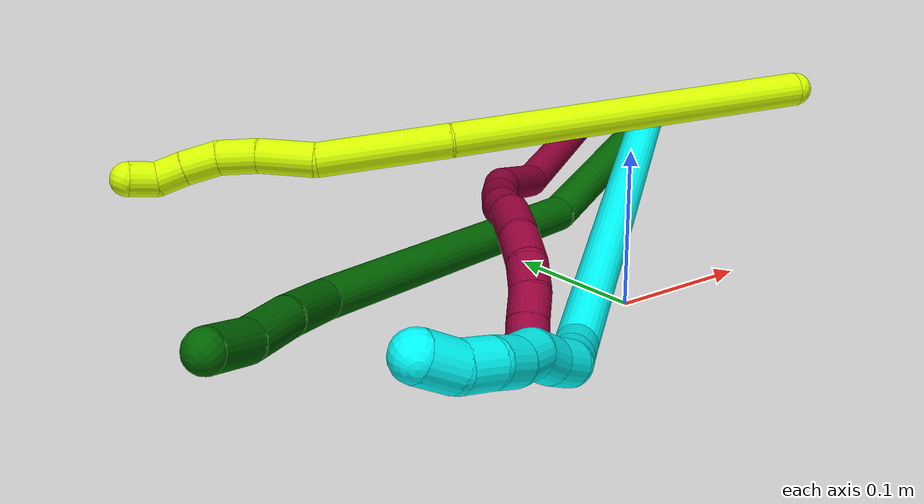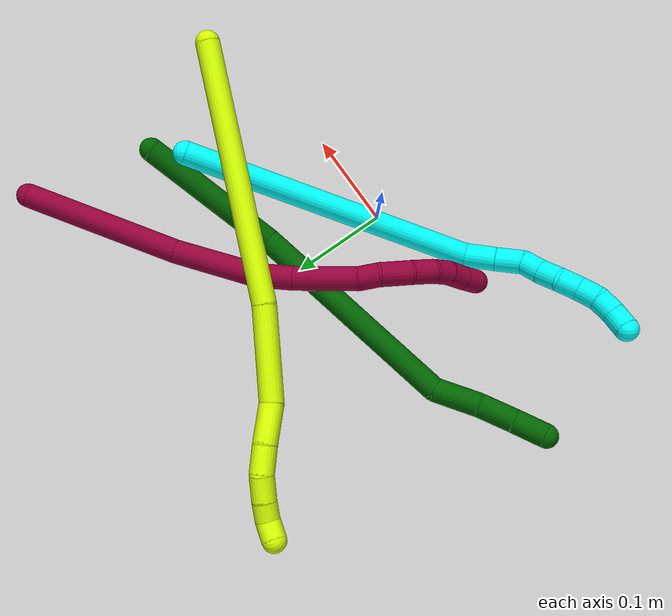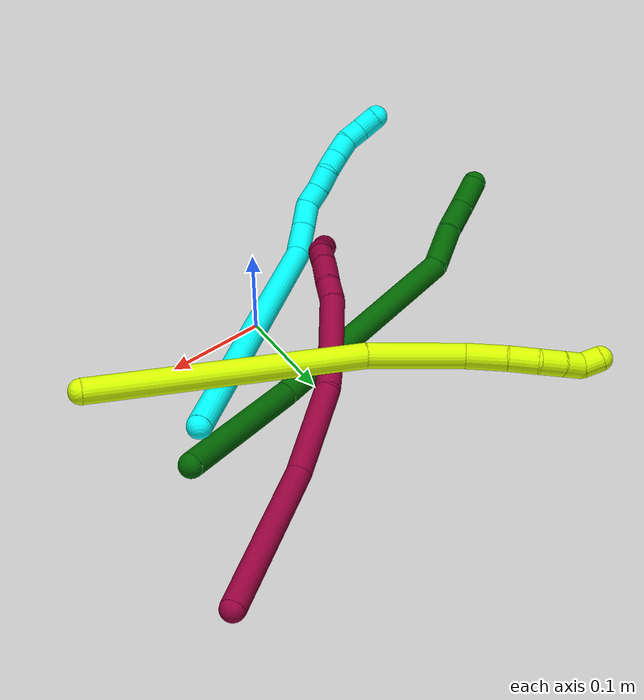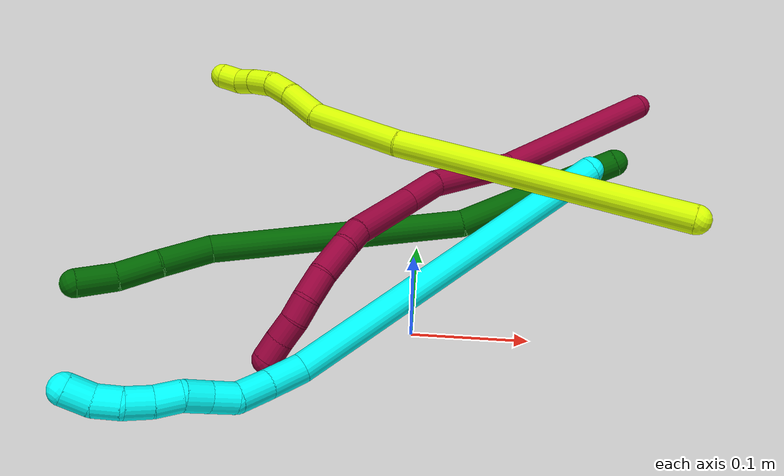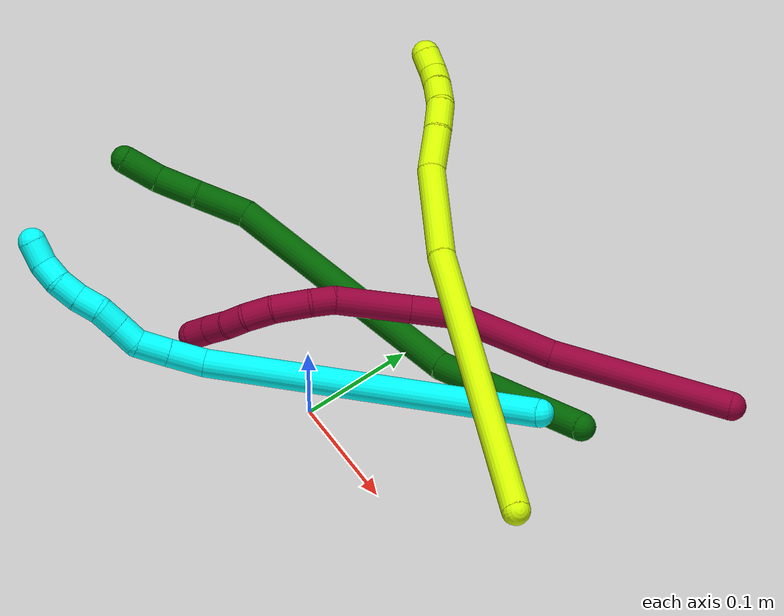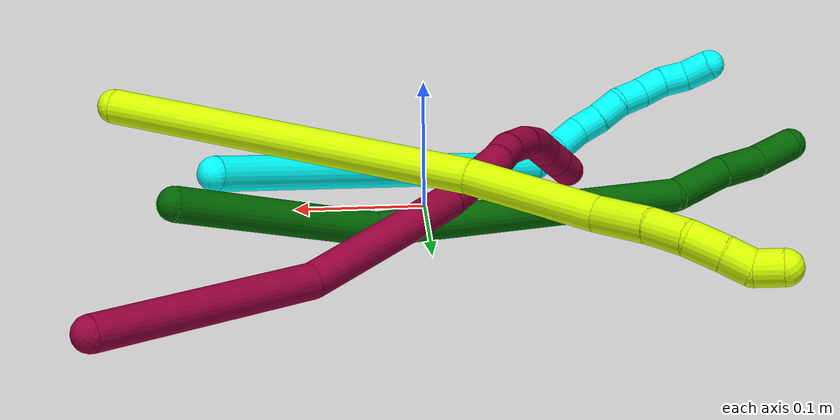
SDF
<sdf version="1.7">
 <world name="default">
  <model name="3">
   <static>0</static>
   <link name="3">
    <collision name="collision-cylinder-e_1_1_4">
     <pose>-0.061236 -0.010171 -0.140804 3.06948 -0.409279 -2.79744</pose>
     <geometry><cylinder><radius>0.0125</radius><length>0.307759</length></cylinder></geometry>
     <surface>
      <friction><ode><mu>1.16</mu><mu2>1.16</mu2><slip1>0</slip1><slip2>0</slip2></ode></friction>
      <contact><ode><kp>1e+06</kp><kd>1</kd><max_vel>0</max_vel><min_depth>0.001</min_depth></ode></contact>
     </surface>
    </collision>
    <visual name="visual-cylinder-e_1_1_4">
     <pose>-0.061236 -0.010171 -0.140804 3.06948 -0.409279 -2.79744</pose>
     <geometry><cylinder><radius>0.0125</radius><length>0.307759</length></cylinder></geometry>
     <material><ambient>0.003922 1 0.996078 1</ambient></material>
    </visual>
    <collision name="collision-cylinder-e_2_4_5">
     <pose>-0.123749 -0.026911 -0.297209 2.74305 -0.07531 -0.368851</pose>
     <geometry><cylinder><radius>0.0125</radius><length>0.033953</length></cylinder></geometry>
     <surface>
      <friction><ode><mu>1.16</mu><mu2>1.16</mu2><slip1>0</slip1><slip2>0</slip2></ode></friction>
      <contact><ode><kp>1e+06</kp><kd>1</kd><max_vel>0</max_vel><min_depth>0.001</min_depth></ode></contact>
     </surface>
    </collision>
    <visual name="visual-cylinder-e_2_4_5">
     <pose>-0.123749 -0.026911 -0.297209 2.74305 -0.07531 -0.368851</pose>
     <geometry><cylinder><radius>0.0125</radius><length>0.033953</length></cylinder></geometry>
     <material><ambient>0.003922 1 0.996078 1</ambient></material>
    </visual>
    <collision name="collision-cylinder-e_3_5_6">
     <pose>-0.125438 -0.039646 -0.325753 2.69699 -0.028649 -0.126582</pose>
     <geometry><cylinder><radius>0.0125</radius><length>0.028684</length></cylinder></geometry>
     <surface>
      <friction><ode><mu>1.16</mu><mu2>1.16</mu2><slip1>0</slip1><slip2>0</slip2></ode></friction>
      <contact><ode><kp>1e+06</kp><kd>1</kd><max_vel>0</max_vel><min_depth>0.001</min_depth></ode></contact>
     </surface>
    </collision>
    <visual name="visual-cylinder-e_3_5_6">
     <pose>-0.125438 -0.039646 -0.325753 2.69699 -0.028649 -0.126582</pose>
     <geometry><cylinder><radius>0.0125</radius><length>0.028684</length></cylinder></geometry>
     <material><ambient>0.003922 1 0.996078 1</ambient></material>
    </visual>
    <collision name="collision-cylinder-e_4_6_7">
     <pose>-0.128818 -0.053556 -0.34574 2.30897 -0.276438 -0.609613</pose>
     <geometry><cylinder><radius>0.0125</radius><length>0.021764</length></cylinder></geometry>
     <surface>
      <friction><ode><mu>1.16</mu><mu2>1.16</mu2><slip1>0</slip1><slip2>0</slip2></ode></friction>
      <contact><ode><kp>1e+06</kp><kd>1</kd><max_vel>0</max_vel><min_depth>0.001</min_depth></ode></contact>
     </surface>
    </collision>
    <visual name="visual-cylinder-e_4_6_7">
     <pose>-0.128818 -0.053556 -0.34574 2.30897 -0.276438 -0.609613</pose>
     <geometry><cylinder><radius>0.0125</radius><length>0.021764</length></cylinder></geometry>
     <material><ambient>0.003922 1 0.996078 1</ambient></material>
    </visual>
    <collision name="collision-cylinder-e_5_7_8">
     <pose>-0.133373 -0.069403 -0.359881 2.29006 -0.146055 -0.319873</pose>
     <geometry><cylinder><radius>0.0125</radius><length>0.021773</length></cylinder></geometry>
     <surface>
      <friction><ode><mu>1.16</mu><mu2>1.16</mu2><slip1>0</slip1><slip2>0</slip2></ode></friction>
      <contact><ode><kp>1e+06</kp><kd>1</kd><max_vel>0</max_vel><min_depth>0.001</min_depth></ode></contact>
     </surface>
    </collision>
    <visual name="visual-cylinder-e_5_7_8">
     <pose>-0.133373 -0.069403 -0.359881 2.29006 -0.146055 -0.319873</pose>
     <geometry><cylinder><radius>0.0125</radius><length>0.021773</length></cylinder></geometry>
     <material><ambient>0.003922 1 0.996078 1</ambient></material>
    </visual>
    <collision name="collision-cylinder-e_6_8_9">
     <pose>-0.138463 -0.082892 -0.375727 2.58979 -0.328764 -1.05995</pose>
     <geometry><cylinder><radius>0.0125</radius><length>0.021714</length></cylinder></geometry>
     <surface>
      <friction><ode><mu>1.16</mu><mu2>1.16</mu2><slip1>0</slip1><slip2>0</slip2></ode></friction>
      <contact><ode><kp>1e+06</kp><kd>1</kd><max_vel>0</max_vel><min_depth>0.001</min_depth></ode></contact>
     </surface>
    </collision>
    <visual name="visual-cylinder-e_6_8_9">
     <pose>-0.138463 -0.082892 -0.375727 2.58979 -0.328764 -1.05995</pose>
     <geometry><cylinder><radius>0.0125</radius><length>0.021714</length></cylinder></geometry>
     <material><ambient>0.003922 1 0.996078 1</ambient></material>
    </visual>
    <collision name="collision-cylinder-e_7_9_10">
     <pose>-0.145179 -0.095239 -0.392122 2.40302 -0.301177 -0.747259</pose>
     <geometry><cylinder><radius>0.0125</radius><length>0.02165</length></cylinder></geometry>
     <surface>
      <friction><ode><mu>1.16</mu><mu2>1.16</mu2><slip1>0</slip1><slip2>0</slip2></ode></friction>
      <contact><ode><kp>1e+06</kp><kd>1</kd><max_vel>0</max_vel><min_depth>0.001</min_depth></ode></contact>
     </surface>
    </collision>
    <visual name="visual-cylinder-e_7_9_10">
     <pose>-0.145179 -0.095239 -0.392122 2.40302 -0.301177 -0.747259</pose>
     <geometry><cylinder><radius>0.0125</radius><length>0.02165</length></cylinder></geometry>
     <material><ambient>0.003922 1 0.996078 1</ambient></material>
    </visual>
    <collision name="collision-cylinder-e_8_10_11">
     <pose>-0.154105 -0.108791 -0.405528 2.28912 -0.578257 -1.1599</pose>
     <geometry><cylinder><radius>0.0125</radius><length>0.02091</length></cylinder></geometry>
     <surface>
      <friction><ode><mu>1.16</mu><mu2>1.16</mu2><slip1>0</slip1><slip2>0</slip2></ode></friction>
      <contact><ode><kp>1e+06</kp><kd>1</kd><max_vel>0</max_vel><min_depth>0.001</min_depth></ode></contact>
     </surface>
    </collision>
    <visual name="visual-cylinder-e_8_10_11">
     <pose>-0.154105 -0.108791 -0.405528 2.28912 -0.578257 -1.1599</pose>
     <geometry><cylinder><radius>0.0125</radius><length>0.02091</length></cylinder></geometry>
     <material><ambient>0.003922 1 0.996078 1</ambient></material>
    </visual>
    <collision name="collision-cylinder-e_9_11_2">
     <pose>-0.164589 -0.124481 -0.414921 1.95049 -0.453127 -0.655813</pose>
     <geometry><cylinder><radius>0.0125</radius><length>0.021792</length></cylinder></geometry>
     <surface>
      <friction><ode><mu>1.16</mu><mu2>1.16</mu2><slip1>0</slip1><slip2>0</slip2></ode></friction>
      <contact><ode><kp>1e+06</kp><kd>1</kd><max_vel>0</max_vel><min_depth>0.001</min_depth></ode></contact>
     </surface>
    </collision>
    <visual name="visual-cylinder-e_9_11_2">
     <pose>-0.164589 -0.124481 -0.414921 1.95049 -0.453127 -0.655813</pose>
     <geometry><cylinder><radius>0.0125</radius><length>0.021792</length></cylinder></geometry>
     <material><ambient>0.003922 1 0.996078 1</ambient></material>
    </visual>
    <collision name="collision-sphere-2">
     <pose>-0.169359 -0.13358 -0.418552 0 -0 0</pose>
     <geometry><sphere><radius>0.0125</radius></sphere></geometry>
     <surface>
      <friction><ode><mu>1.16</mu><mu2>1.16</mu2><slip1>0</slip1><slip2>0</slip2></ode></friction>
      <contact><ode><kp>1e+06</kp><kd>1</kd><max_vel>0</max_vel><min_depth>0.001</min_depth></ode></contact>
     </surface>
    </collision>
    <visual name="visual-sphere-2">
     <pose>-0.169359 -0.13358 -0.418552 0 -0 0</pose>
     <geometry><sphere><radius>0.0125</radius></sphere></geometry>
     <material><ambient>0.003922 1 0.996078 1</ambient></material>
    </visual>
    <collision name="collision-sphere-11">
     <pose>-0.159819 -0.115382 -0.41129 0 -0 0</pose>
     <geometry><sphere><radius>0.0125</radius></sphere></geometry>
     <surface>
      <friction><ode><mu>1.16</mu><mu2>1.16</mu2><slip1>0</slip1><slip2>0</slip2></ode></friction>
      <contact><ode><kp>1e+06</kp><kd>1</kd><max_vel>0</max_vel><min_depth>0.001</min_depth></ode></contact>
     </surface>
    </collision>
    <visual name="visual-sphere-11">
     <pose>-0.159819 -0.115382 -0.41129 0 -0 0</pose>
     <geometry><sphere><radius>0.0125</radius></sphere></geometry>
     <material><ambient>0.003922 1 0.996078 1</ambient></material>
    </visual>
    <collision name="collision-sphere-10">
     <pose>-0.148391 -0.102199 -0.399766 0 -0 0</pose>
     <geometry><sphere><radius>0.0125</radius></sphere></geometry>
     <surface>
      <friction><ode><mu>1.16</mu><mu2>1.16</mu2><slip1>0</slip1><slip2>0</slip2></ode></friction>
      <contact><ode><kp>1e+06</kp><kd>1</kd><max_vel>0</max_vel><min_depth>0.001</min_depth></ode></contact>
     </surface>
    </collision>
    <visual name="visual-sphere-10">
     <pose>-0.148391 -0.102199 -0.399766 0 -0 0</pose>
     <geometry><sphere><radius>0.0125</radius></sphere></geometry>
     <material><ambient>0.003922 1 0.996078 1</ambient></material>
    </visual>
    <collision name="collision-sphere-9">
     <pose>-0.141968 -0.088279 -0.384478 0 -0 0</pose>
     <geometry><sphere><radius>0.0125</radius></sphere></geometry>
     <surface>
      <friction><ode><mu>1.16</mu><mu2>1.16</mu2><slip1>0</slip1><slip2>0</slip2></ode></friction>
      <contact><ode><kp>1e+06</kp><kd>1</kd><max_vel>0</max_vel><min_depth>0.001</min_depth></ode></contact>
     </surface>
    </collision>
    <visual name="visual-sphere-9">
     <pose>-0.141968 -0.088279 -0.384478 0 -0 0</pose>
     <geometry><sphere><radius>0.0125</radius></sphere></geometry>
     <material><ambient>0.003922 1 0.996078 1</ambient></material>
    </visual>
    <collision name="collision-sphere-4">
     <pose>-0.122472 -0.020342 -0.281607 0 -0 0</pose>
     <geometry><sphere><radius>0.0125</radius></sphere></geometry>
     <surface>
      <friction><ode><mu>1.16</mu><mu2>1.16</mu2><slip1>0</slip1><slip2>0</slip2></ode></friction>
      <contact><ode><kp>1e+06</kp><kd>1</kd><max_vel>0</max_vel><min_depth>0.001</min_depth></ode></contact>
     </surface>
    </collision>
    <visual name="visual-sphere-4">
     <pose>-0.122472 -0.020342 -0.281607 0 -0 0</pose>
     <geometry><sphere><radius>0.0125</radius></sphere></geometry>
     <material><ambient>0.003922 1 0.996078 1</ambient></material>
    </visual>
    <collision name="collision-sphere-1">
     <geometry><sphere><radius>0.0125</radius></sphere></geometry>
     <surface>
      <friction><ode><mu>1.16</mu><mu2>1.16</mu2><slip1>0</slip1><slip2>0</slip2></ode></friction>
      <contact><ode><kp>1e+06</kp><kd>1</kd><max_vel>0</max_vel><min_depth>0.001</min_depth></ode></contact>
     </surface>
    </collision>
    <visual name="visual-sphere-1">
     <geometry><sphere><radius>0.0125</radius></sphere></geometry>
     <material><ambient>0.003922 1 0.996078 1</ambient></material>
    </visual>
    <collision name="collision-sphere-8">
     <pose>-0.134957 -0.077506 -0.366977 0 -0 0</pose>
     <geometry><sphere><radius>0.0125</radius></sphere></geometry>
     <surface>
      <friction><ode><mu>1.16</mu><mu2>1.16</mu2><slip1>0</slip1><slip2>0</slip2></ode></friction>
      <contact><ode><kp>1e+06</kp><kd>1</kd><max_vel>0</max_vel><min_depth>0.001</min_depth></ode></contact>
     </surface>
    </collision>
    <visual name="visual-sphere-8">
     <pose>-0.134957 -0.077506 -0.366977 0 -0 0</pose>
     <geometry><sphere><radius>0.0125</radius></sphere></geometry>
     <material><ambient>0.003922 1 0.996078 1</ambient></material>
    </visual>
    <collision name="collision-sphere-5">
     <pose>-0.125027 -0.033481 -0.31281 0 -0 0</pose>
     <geometry><sphere><radius>0.0125</radius></sphere></geometry>
     <surface>
      <friction><ode><mu>1.16</mu><mu2>1.16</mu2><slip1>0</slip1><slip2>0</slip2></ode></friction>
      <contact><ode><kp>1e+06</kp><kd>1</kd><max_vel>0</max_vel><min_depth>0.001</min_depth></ode></contact>
     </surface>
    </collision>
    <visual name="visual-sphere-5">
     <pose>-0.125027 -0.033481 -0.31281 0 -0 0</pose>
     <geometry><sphere><radius>0.0125</radius></sphere></geometry>
     <material><ambient>0.003922 1 0.996078 1</ambient></material>
    </visual>
    <collision name="collision-sphere-6">
     <pose>-0.125848 -0.045812 -0.338695 0 -0 0</pose>
     <geometry><sphere><radius>0.0125</radius></sphere></geometry>
     <surface>
      <friction><ode><mu>1.16</mu><mu2>1.16</mu2><slip1>0</slip1><slip2>0</slip2></ode></friction>
      <contact><ode><kp>1e+06</kp><kd>1</kd><max_vel>0</max_vel><min_depth>0.001</min_depth></ode></contact>
     </surface>
    </collision>
    <visual name="visual-sphere-6">
     <pose>-0.125848 -0.045812 -0.338695 0 -0 0</pose>
     <geometry><sphere><radius>0.0125</radius></sphere></geometry>
     <material><ambient>0.003922 1 0.996078 1</ambient></material>
    </visual>
    <collision name="collision-sphere-7">
     <pose>-0.131788 -0.0613 -0.352785 0 -0 0</pose>
     <geometry><sphere><radius>0.0125</radius></sphere></geometry>
     <surface>
      <friction><ode><mu>1.16</mu><mu2>1.16</mu2><slip1>0</slip1><slip2>0</slip2></ode></friction>
      <contact><ode><kp>1e+06</kp><kd>1</kd><max_vel>0</max_vel><min_depth>0.001</min_depth></ode></contact>
     </surface>
    </collision>
    <visual name="visual-sphere-7">
     <pose>-0.131788 -0.0613 -0.352785 0 -0 0</pose>
     <geometry><sphere><radius>0.0125</radius></sphere></geometry>
     <material><ambient>0.003922 1 0.996078 1</ambient></material>
    </visual>
    <inertial>
     <pose>-0.090624 -0.033414 -0.224598 0 -0 0</pose>
     <mass>0.5</mass>
     <inertia>
      <ixx>-0.002871</ixx>
      <ixy>0</ixy>
      <ixz>0</ixz>
      <iyy>0.001532</iyy>
      <iyz>0</iyz>
      <izz>0.001114</izz>
     </inertia>
    </inertial>
   </link>
   <pose>0.151053 0.133585 0.079047 -1.48965 -0.563387 -0.56879</pose>
  </model>
  <model name="6">
   <static>0</static>
   <link name="6">
    <collision name="collision-cylinder-e_1_1_4">
     <pose>-0.006711 -0.004158 -0.07487 3.08611 -0.08926 -2.02975</pose>
     <geometry><cylinder><radius>0.0125</radius><length>0.150569</length></cylinder></geometry>
     <surface>
      <friction><ode><mu>1.16</mu><mu2>1.16</mu2><slip1>0</slip1><slip2>0</slip2></ode></friction>
      <contact><ode><kp>1e+06</kp><kd>1</kd><max_vel>0</max_vel><min_depth>0.001</min_depth></ode></contact>
     </surface>
    </collision>
    <visual name="visual-cylinder-e_1_1_4">
     <pose>-0.006711 -0.004158 -0.07487 3.08611 -0.08926 -2.02975</pose>
     <geometry><cylinder><radius>0.0125</radius><length>0.150569</length></cylinder></geometry>
     <material><ambient>0 0.392157 0.003922 1</ambient></material>
    </visual>
    <collision name="collision-cylinder-e_2_4_5">
     <pose>-0.054237 -0.02925 -0.255049 2.94536 -0.363261 -2.15758</pose>
     <geometry><cylinder><radius>0.0125</radius><length>0.229732</length></cylinder></geometry>
     <surface>
      <friction><ode><mu>1.16</mu><mu2>1.16</mu2><slip1>0</slip1><slip2>0</slip2></ode></friction>
      <contact><ode><kp>1e+06</kp><kd>1</kd><max_vel>0</max_vel><min_depth>0.001</min_depth></ode></contact>
     </surface>
    </collision>
    <visual name="visual-cylinder-e_2_4_5">
     <pose>-0.054237 -0.02925 -0.255049 2.94536 -0.363261 -2.15758</pose>
     <geometry><cylinder><radius>0.0125</radius><length>0.229732</length></cylinder></geometry>
     <material><ambient>0 0.392157 0.003922 1</ambient></material>
    </visual>
    <collision name="collision-cylinder-e_3_5_6">
     <pose>-0.098487 -0.062603 -0.380032 2.57855 -0.146621 -0.497381</pose>
     <geometry><cylinder><radius>0.0125</radius><length>0.047036</length></cylinder></geometry>
     <surface>
      <friction><ode><mu>1.16</mu><mu2>1.16</mu2><slip1>0</slip1><slip2>0</slip2></ode></friction>
      <contact><ode><kp>1e+06</kp><kd>1</kd><max_vel>0</max_vel><min_depth>0.001</min_depth></ode></contact>
     </surface>
    </collision>
    <visual name="visual-cylinder-e_3_5_6">
     <pose>-0.098487 -0.062603 -0.380032 2.57855 -0.146621 -0.497381</pose>
     <geometry><cylinder><radius>0.0125</radius><length>0.047036</length></cylinder></geometry>
     <material><ambient>0 0.392157 0.003922 1</ambient></material>
    </visual>
    <collision name="collision-cylinder-e_4_6_7">
     <pose>-0.104462 -0.082634 -0.416896 2.72472 -0.134261 -0.615531</pose>
     <geometry><cylinder><radius>0.0125</radius><length>0.037941</length></cylinder></geometry>
     <surface>
      <friction><ode><mu>1.16</mu><mu2>1.16</mu2><slip1>0</slip1><slip2>0</slip2></ode></friction>
      <contact><ode><kp>1e+06</kp><kd>1</kd><max_vel>0</max_vel><min_depth>0.001</min_depth></ode></contact>
     </surface>
    </collision>
    <visual name="visual-cylinder-e_4_6_7">
     <pose>-0.104462 -0.082634 -0.416896 2.72472 -0.134261 -0.615531</pose>
     <geometry><cylinder><radius>0.0125</radius><length>0.037941</length></cylinder></geometry>
     <material><ambient>0 0.392157 0.003922 1</ambient></material>
    </visual>
    <collision name="collision-cylinder-e_5_7_2">
     <pose>-0.111867 -0.09902 -0.448254 2.58709 -0.284062 -0.931243</pose>
     <geometry><cylinder><radius>0.0125</radius><length>0.034722</length></cylinder></geometry>
     <surface>
      <friction><ode><mu>1.16</mu><mu2>1.16</mu2><slip1>0</slip1><slip2>0</slip2></ode></friction>
      <contact><ode><kp>1e+06</kp><kd>1</kd><max_vel>0</max_vel><min_depth>0.001</min_depth></ode></contact>
     </surface>
    </collision>
    <visual name="visual-cylinder-e_5_7_2">
     <pose>-0.111867 -0.09902 -0.448254 2.58709 -0.284062 -0.931243</pose>
     <geometry><cylinder><radius>0.0125</radius><length>0.034722</length></cylinder></geometry>
     <material><ambient>0 0.392157 0.003922 1</ambient></material>
    </visual>
    <collision name="collision-sphere-2">
     <pose>-0.116733 -0.107795 -0.462422 0 -0 0</pose>
     <geometry><sphere><radius>0.0125</radius></sphere></geometry>
     <surface>
      <friction><ode><mu>1.16</mu><mu2>1.16</mu2><slip1>0</slip1><slip2>0</slip2></ode></friction>
      <contact><ode><kp>1e+06</kp><kd>1</kd><max_vel>0</max_vel><min_depth>0.001</min_depth></ode></contact>
     </surface>
    </collision>
    <visual name="visual-sphere-2">
     <pose>-0.116733 -0.107795 -0.462422 0 -0 0</pose>
     <geometry><sphere><radius>0.0125</radius></sphere></geometry>
     <material><ambient>0 0.392157 0.003922 1</ambient></material>
    </visual>
    <collision name="collision-sphere-7">
     <pose>-0.107002 -0.090246 -0.434086 0 -0 0</pose>
     <geometry><sphere><radius>0.0125</radius></sphere></geometry>
     <surface>
      <friction><ode><mu>1.16</mu><mu2>1.16</mu2><slip1>0</slip1><slip2>0</slip2></ode></friction>
      <contact><ode><kp>1e+06</kp><kd>1</kd><max_vel>0</max_vel><min_depth>0.001</min_depth></ode></contact>
     </surface>
    </collision>
    <visual name="visual-sphere-7">
     <pose>-0.107002 -0.090246 -0.434086 0 -0 0</pose>
     <geometry><sphere><radius>0.0125</radius></sphere></geometry>
     <material><ambient>0 0.392157 0.003922 1</ambient></material>
    </visual>
    <collision name="collision-sphere-6">
     <pose>-0.101923 -0.075021 -0.399707 0 -0 0</pose>
     <geometry><sphere><radius>0.0125</radius></sphere></geometry>
     <surface>
      <friction><ode><mu>1.16</mu><mu2>1.16</mu2><slip1>0</slip1><slip2>0</slip2></ode></friction>
      <contact><ode><kp>1e+06</kp><kd>1</kd><max_vel>0</max_vel><min_depth>0.001</min_depth></ode></contact>
     </surface>
    </collision>
    <visual name="visual-sphere-6">
     <pose>-0.101923 -0.075021 -0.399707 0 -0 0</pose>
     <geometry><sphere><radius>0.0125</radius></sphere></geometry>
     <material><ambient>0 0.392157 0.003922 1</ambient></material>
    </visual>
    <collision name="collision-sphere-5">
     <pose>-0.095051 -0.050185 -0.360358 0 -0 0</pose>
     <geometry><sphere><radius>0.0125</radius></sphere></geometry>
     <surface>
      <friction><ode><mu>1.16</mu><mu2>1.16</mu2><slip1>0</slip1><slip2>0</slip2></ode></friction>
      <contact><ode><kp>1e+06</kp><kd>1</kd><max_vel>0</max_vel><min_depth>0.001</min_depth></ode></contact>
     </surface>
    </collision>
    <visual name="visual-sphere-5">
     <pose>-0.095051 -0.050185 -0.360358 0 -0 0</pose>
     <geometry><sphere><radius>0.0125</radius></sphere></geometry>
     <material><ambient>0 0.392157 0.003922 1</ambient></material>
    </visual>
    <collision name="collision-sphere-1">
     <geometry><sphere><radius>0.0125</radius></sphere></geometry>
     <surface>
      <friction><ode><mu>1.16</mu><mu2>1.16</mu2><slip1>0</slip1><slip2>0</slip2></ode></friction>
      <contact><ode><kp>1e+06</kp><kd>1</kd><max_vel>0</max_vel><min_depth>0.001</min_depth></ode></contact>
     </surface>
    </collision>
    <visual name="visual-sphere-1">
     <geometry><sphere><radius>0.0125</radius></sphere></geometry>
     <material><ambient>0 0.392157 0.003922 1</ambient></material>
    </visual>
    <collision name="collision-sphere-4">
     <pose>-0.013422 -0.008316 -0.149739 0 -0 0</pose>
     <geometry><sphere><radius>0.0125</radius></sphere></geometry>
     <surface>
      <friction><ode><mu>1.16</mu><mu2>1.16</mu2><slip1>0</slip1><slip2>0</slip2></ode></friction>
      <contact><ode><kp>1e+06</kp><kd>1</kd><max_vel>0</max_vel><min_depth>0.001</min_depth></ode></contact>
     </surface>
    </collision>
    <visual name="visual-sphere-4">
     <pose>-0.013422 -0.008316 -0.149739 0 -0 0</pose>
     <geometry><sphere><radius>0.0125</radius></sphere></geometry>
     <material><ambient>0 0.392157 0.003922 1</ambient></material>
    </visual>
    <inertial>
     <pose>-0.051901 -0.033728 -0.238245 0 -0 0</pose>
     <mass>0.5</mass>
     <inertia>
      <ixx>-0.001713</ixx>
      <ixy>0</ixy>
      <ixz>0</ixz>
      <iyy>-0.000345</iyy>
      <iyz>0</iyz>
      <izz>0.000568</izz>
     </inertia>
    </inertial>
   </link>
   <pose>0.1773 0.158785 0.067084 -1.09236 0.641767 -0.898695</pose>
  </model>
  <model name="8">
   <static>0</static>
   <link name="8">
    <collision name="collision-cylinder-e_1_1_4">
     <pose>-0.03444 0.027889 -0.069263 -2.7588 -0.432168 1.69522</pose>
     <geometry><cylinder><radius>0.0125</radius><length>0.164453</length></cylinder></geometry>
     <surface>
      <friction><ode><mu>1.16</mu><mu2>1.16</mu2><slip1>0</slip1><slip2>0</slip2></ode></friction>
      <contact><ode><kp>1e+06</kp><kd>1</kd><max_vel>0</max_vel><min_depth>0.001</min_depth></ode></contact>
     </surface>
    </collision>
    <visual name="visual-cylinder-e_1_1_4">
     <pose>-0.03444 0.027889 -0.069263 -2.7588 -0.432168 1.69522</pose>
     <geometry><cylinder><radius>0.0125</radius><length>0.164453</length></cylinder></geometry>
     <material><ambient>0.584314 0 0.227451 1</ambient></material>
    </visual>
    <collision name="collision-cylinder-e_2_4_5">
     <pose>-0.093836 0.079482 -0.169286 -2.48504 -0.571179 1.4229</pose>
     <geometry><cylinder><radius>0.0125</radius><length>0.092326</length></cylinder></geometry>
     <surface>
      <friction><ode><mu>1.16</mu><mu2>1.16</mu2><slip1>0</slip1><slip2>0</slip2></ode></friction>
      <contact><ode><kp>1e+06</kp><kd>1</kd><max_vel>0</max_vel><min_depth>0.001</min_depth></ode></contact>
     </surface>
    </collision>
    <visual name="visual-cylinder-e_2_4_5">
     <pose>-0.093836 0.079482 -0.169286 -2.48504 -0.571179 1.4229</pose>
     <geometry><cylinder><radius>0.0125</radius><length>0.092326</length></cylinder></geometry>
     <material><ambient>0.584314 0 0.227451 1</ambient></material>
    </visual>
    <collision name="collision-cylinder-e_3_5_6">
     <pose>-0.13113 0.108413 -0.213017 -2.7585 -0.722955 2.19377</pose>
     <geometry><cylinder><radius>0.0125</radius><length>0.037294</length></cylinder></geometry>
     <surface>
      <friction><ode><mu>1.16</mu><mu2>1.16</mu2><slip1>0</slip1><slip2>0</slip2></ode></friction>
      <contact><ode><kp>1e+06</kp><kd>1</kd><max_vel>0</max_vel><min_depth>0.001</min_depth></ode></contact>
     </surface>
    </collision>
    <visual name="visual-cylinder-e_3_5_6">
     <pose>-0.13113 0.108413 -0.213017 -2.7585 -0.722955 2.19377</pose>
     <geometry><cylinder><radius>0.0125</radius><length>0.037294</length></cylinder></geometry>
     <material><ambient>0.584314 0 0.227451 1</ambient></material>
    </visual>
    <collision name="collision-cylinder-e_4_6_7">
     <pose>-0.167815 0.124078 -0.246337 -2.66766 -0.816643 2.12334</pose>
     <geometry><cylinder><radius>0.0125</radius><length>0.066812</length></cylinder></geometry>
     <surface>
      <friction><ode><mu>1.16</mu><mu2>1.16</mu2><slip1>0</slip1><slip2>0</slip2></ode></friction>
      <contact><ode><kp>1e+06</kp><kd>1</kd><max_vel>0</max_vel><min_depth>0.001</min_depth></ode></contact>
     </surface>
    </collision>
    <visual name="visual-cylinder-e_4_6_7">
     <pose>-0.167815 0.124078 -0.246337 -2.66766 -0.816643 2.12334</pose>
     <geometry><cylinder><radius>0.0125</radius><length>0.066812</length></cylinder></geometry>
     <material><ambient>0.584314 0 0.227451 1</ambient></material>
    </visual>
    <collision name="collision-cylinder-e_5_7_8">
     <pose>-0.200904 0.135528 -0.272637 -2.97316 -0.966585 2.82261</pose>
     <geometry><cylinder><radius>0.0125</radius><length>0.021244</length></cylinder></geometry>
     <surface>
      <friction><ode><mu>1.16</mu><mu2>1.16</mu2><slip1>0</slip1><slip2>0</slip2></ode></friction>
      <contact><ode><kp>1e+06</kp><kd>1</kd><max_vel>0</max_vel><min_depth>0.001</min_depth></ode></contact>
     </surface>
    </collision>
    <visual name="visual-cylinder-e_5_7_8">
     <pose>-0.200904 0.135528 -0.272637 -2.97316 -0.966585 2.82261</pose>
     <geometry><cylinder><radius>0.0125</radius><length>0.021244</length></cylinder></geometry>
     <material><ambient>0.584314 0 0.227451 1</ambient></material>
    </visual>
    <collision name="collision-cylinder-e_6_8_9">
     <pose>-0.220897 0.136179 -0.290481 3.11125 -0.757393 -3.06537</pose>
     <geometry><cylinder><radius>0.0125</radius><length>0.032754</length></cylinder></geometry>
     <surface>
      <friction><ode><mu>1.16</mu><mu2>1.16</mu2><slip1>0</slip1><slip2>0</slip2></ode></friction>
      <contact><ode><kp>1e+06</kp><kd>1</kd><max_vel>0</max_vel><min_depth>0.001</min_depth></ode></contact>
     </surface>
    </collision>
    <visual name="visual-cylinder-e_6_8_9">
     <pose>-0.220897 0.136179 -0.290481 3.11125 -0.757393 -3.06537</pose>
     <geometry><cylinder><radius>0.0125</radius><length>0.032754</length></cylinder></geometry>
     <material><ambient>0.584314 0 0.227451 1</ambient></material>
    </visual>
    <collision name="collision-cylinder-e_7_9_10">
     <pose>-0.239559 0.133579 -0.312226 2.91809 -0.632897 -2.48127</pose>
     <geometry><cylinder><radius>0.0125</radius><length>0.025057</length></cylinder></geometry>
     <surface>
      <friction><ode><mu>1.16</mu><mu2>1.16</mu2><slip1>0</slip1><slip2>0</slip2></ode></friction>
      <contact><ode><kp>1e+06</kp><kd>1</kd><max_vel>0</max_vel><min_depth>0.001</min_depth></ode></contact>
     </surface>
    </collision>
    <visual name="visual-cylinder-e_7_9_10">
     <pose>-0.239559 0.133579 -0.312226 2.91809 -0.632897 -2.48127</pose>
     <geometry><cylinder><radius>0.0125</radius><length>0.025057</length></cylinder></geometry>
     <material><ambient>0.584314 0 0.227451 1</ambient></material>
    </visual>
    <collision name="collision-cylinder-e_8_10_11">
     <pose>-0.250748 0.128241 -0.330827 2.80125 -0.386561 -1.7006</pose>
     <geometry><cylinder><radius>0.0125</radius><length>0.020046</length></cylinder></geometry>
     <surface>
      <friction><ode><mu>1.16</mu><mu2>1.16</mu2><slip1>0</slip1><slip2>0</slip2></ode></friction>
      <contact><ode><kp>1e+06</kp><kd>1</kd><max_vel>0</max_vel><min_depth>0.001</min_depth></ode></contact>
     </surface>
    </collision>
    <visual name="visual-cylinder-e_8_10_11">
     <pose>-0.250748 0.128241 -0.330827 2.80125 -0.386561 -1.7006</pose>
     <geometry><cylinder><radius>0.0125</radius><length>0.020046</length></cylinder></geometry>
     <material><ambient>0.584314 0 0.227451 1</ambient></material>
    </visual>
    <collision name="collision-cylinder-e_9_11_12">
     <pose>-0.256726 0.12264 -0.349014 2.88247 -0.221641 -1.41369</pose>
     <geometry><cylinder><radius>0.0125</radius><length>0.020013</length></cylinder></geometry>
     <surface>
      <friction><ode><mu>1.16</mu><mu2>1.16</mu2><slip1>0</slip1><slip2>0</slip2></ode></friction>
      <contact><ode><kp>1e+06</kp><kd>1</kd><max_vel>0</max_vel><min_depth>0.001</min_depth></ode></contact>
     </surface>
    </collision>
    <visual name="visual-cylinder-e_9_11_12">
     <pose>-0.256726 0.12264 -0.349014 2.88247 -0.221641 -1.41369</pose>
     <geometry><cylinder><radius>0.0125</radius><length>0.020013</length></cylinder></geometry>
     <material><ambient>0.584314 0 0.227451 1</ambient></material>
    </visual>
    <collision name="collision-cylinder-e_10_12_2">
     <pose>-0.261597 0.117396 -0.367689 2.853 -0.270372 -1.50477</pose>
     <geometry><cylinder><radius>0.0125</radius><length>0.020002</length></cylinder></geometry>
     <surface>
      <friction><ode><mu>1.16</mu><mu2>1.16</mu2><slip1>0</slip1><slip2>0</slip2></ode></friction>
      <contact><ode><kp>1e+06</kp><kd>1</kd><max_vel>0</max_vel><min_depth>0.001</min_depth></ode></contact>
     </surface>
    </collision>
    <visual name="visual-cylinder-e_10_12_2">
     <pose>-0.261597 0.117396 -0.367689 2.853 -0.270372 -1.50477</pose>
     <geometry><cylinder><radius>0.0125</radius><length>0.020002</length></cylinder></geometry>
     <material><ambient>0.584314 0 0.227451 1</ambient></material>
    </visual>
    <collision name="collision-sphere-2">
     <pose>-0.264268 0.114653 -0.376928 0 -0 0</pose>
     <geometry><sphere><radius>0.0125</radius></sphere></geometry>
     <surface>
      <friction><ode><mu>1.16</mu><mu2>1.16</mu2><slip1>0</slip1><slip2>0</slip2></ode></friction>
      <contact><ode><kp>1e+06</kp><kd>1</kd><max_vel>0</max_vel><min_depth>0.001</min_depth></ode></contact>
     </surface>
    </collision>
    <visual name="visual-sphere-2">
     <pose>-0.264268 0.114653 -0.376928 0 -0 0</pose>
     <geometry><sphere><radius>0.0125</radius></sphere></geometry>
     <material><ambient>0.584314 0 0.227451 1</ambient></material>
    </visual>
    <collision name="collision-sphere-12">
     <pose>-0.258926 0.120139 -0.35845 0 -0 0</pose>
     <geometry><sphere><radius>0.0125</radius></sphere></geometry>
     <surface>
      <friction><ode><mu>1.16</mu><mu2>1.16</mu2><slip1>0</slip1><slip2>0</slip2></ode></friction>
      <contact><ode><kp>1e+06</kp><kd>1</kd><max_vel>0</max_vel><min_depth>0.001</min_depth></ode></contact>
     </surface>
    </collision>
    <visual name="visual-sphere-12">
     <pose>-0.258926 0.120139 -0.35845 0 -0 0</pose>
     <geometry><sphere><radius>0.0125</radius></sphere></geometry>
     <material><ambient>0.584314 0 0.227451 1</ambient></material>
    </visual>
    <collision name="collision-sphere-11">
     <pose>-0.254526 0.125142 -0.339578 0 -0 0</pose>
     <geometry><sphere><radius>0.0125</radius></sphere></geometry>
     <surface>
      <friction><ode><mu>1.16</mu><mu2>1.16</mu2><slip1>0</slip1><slip2>0</slip2></ode></friction>
      <contact><ode><kp>1e+06</kp><kd>1</kd><max_vel>0</max_vel><min_depth>0.001</min_depth></ode></contact>
     </surface>
    </collision>
    <visual name="visual-sphere-11">
     <pose>-0.254526 0.125142 -0.339578 0 -0 0</pose>
     <geometry><sphere><radius>0.0125</radius></sphere></geometry>
     <material><ambient>0.584314 0 0.227451 1</ambient></material>
    </visual>
    <collision name="collision-sphere-10">
     <pose>-0.246969 0.13134 -0.322077 0 -0 0</pose>
     <geometry><sphere><radius>0.0125</radius></sphere></geometry>
     <surface>
      <friction><ode><mu>1.16</mu><mu2>1.16</mu2><slip1>0</slip1><slip2>0</slip2></ode></friction>
      <contact><ode><kp>1e+06</kp><kd>1</kd><max_vel>0</max_vel><min_depth>0.001</min_depth></ode></contact>
     </surface>
    </collision>
    <visual name="visual-sphere-10">
     <pose>-0.246969 0.13134 -0.322077 0 -0 0</pose>
     <geometry><sphere><radius>0.0125</radius></sphere></geometry>
     <material><ambient>0.584314 0 0.227451 1</ambient></material>
    </visual>
    <collision name="collision-sphere-9">
     <pose>-0.232148 0.135818 -0.302375 0 -0 0</pose>
     <geometry><sphere><radius>0.0125</radius></sphere></geometry>
     <surface>
      <friction><ode><mu>1.16</mu><mu2>1.16</mu2><slip1>0</slip1><slip2>0</slip2></ode></friction>
      <contact><ode><kp>1e+06</kp><kd>1</kd><max_vel>0</max_vel><min_depth>0.001</min_depth></ode></contact>
     </surface>
    </collision>
    <visual name="visual-sphere-9">
     <pose>-0.232148 0.135818 -0.302375 0 -0 0</pose>
     <geometry><sphere><radius>0.0125</radius></sphere></geometry>
     <material><ambient>0.584314 0 0.227451 1</ambient></material>
    </visual>
    <collision name="collision-sphere-4">
     <pose>-0.06888 0.055777 -0.138525 0 -0 0</pose>
     <geometry><sphere><radius>0.0125</radius></sphere></geometry>
     <surface>
      <friction><ode><mu>1.16</mu><mu2>1.16</mu2><slip1>0</slip1><slip2>0</slip2></ode></friction>
      <contact><ode><kp>1e+06</kp><kd>1</kd><max_vel>0</max_vel><min_depth>0.001</min_depth></ode></contact>
     </surface>
    </collision>
    <visual name="visual-sphere-4">
     <pose>-0.06888 0.055777 -0.138525 0 -0 0</pose>
     <geometry><sphere><radius>0.0125</radius></sphere></geometry>
     <material><ambient>0.584314 0 0.227451 1</ambient></material>
    </visual>
    <collision name="collision-sphere-1">
     <geometry><sphere><radius>0.0125</radius></sphere></geometry>
     <surface>
      <friction><ode><mu>1.16</mu><mu2>1.16</mu2><slip1>0</slip1><slip2>0</slip2></ode></friction>
      <contact><ode><kp>1e+06</kp><kd>1</kd><max_vel>0</max_vel><min_depth>0.001</min_depth></ode></contact>
     </surface>
    </collision>
    <visual name="visual-sphere-1">
     <geometry><sphere><radius>0.0125</radius></sphere></geometry>
     <material><ambient>0.584314 0 0.227451 1</ambient></material>
    </visual>
    <collision name="collision-sphere-8">
     <pose>-0.209645 0.13654 -0.278586 0 -0 0</pose>
     <geometry><sphere><radius>0.0125</radius></sphere></geometry>
     <surface>
      <friction><ode><mu>1.16</mu><mu2>1.16</mu2><slip1>0</slip1><slip2>0</slip2></ode></friction>
      <contact><ode><kp>1e+06</kp><kd>1</kd><max_vel>0</max_vel><min_depth>0.001</min_depth></ode></contact>
     </surface>
    </collision>
    <visual name="visual-sphere-8">
     <pose>-0.209645 0.13654 -0.278586 0 -0 0</pose>
     <geometry><sphere><radius>0.0125</radius></sphere></geometry>
     <material><ambient>0.584314 0 0.227451 1</ambient></material>
    </visual>
    <collision name="collision-sphere-5">
     <pose>-0.118793 0.103187 -0.200048 0 -0 0</pose>
     <geometry><sphere><radius>0.0125</radius></sphere></geometry>
     <surface>
      <friction><ode><mu>1.16</mu><mu2>1.16</mu2><slip1>0</slip1><slip2>0</slip2></ode></friction>
      <contact><ode><kp>1e+06</kp><kd>1</kd><max_vel>0</max_vel><min_depth>0.001</min_depth></ode></contact>
     </surface>
    </collision>
    <visual name="visual-sphere-5">
     <pose>-0.118793 0.103187 -0.200048 0 -0 0</pose>
     <geometry><sphere><radius>0.0125</radius></sphere></geometry>
     <material><ambient>0.584314 0 0.227451 1</ambient></material>
    </visual>
    <collision name="collision-sphere-6">
     <pose>-0.143467 0.113639 -0.225986 0 -0 0</pose>
     <geometry><sphere><radius>0.0125</radius></sphere></geometry>
     <surface>
      <friction><ode><mu>1.16</mu><mu2>1.16</mu2><slip1>0</slip1><slip2>0</slip2></ode></friction>
      <contact><ode><kp>1e+06</kp><kd>1</kd><max_vel>0</max_vel><min_depth>0.001</min_depth></ode></contact>
     </surface>
    </collision>
    <visual name="visual-sphere-6">
     <pose>-0.143467 0.113639 -0.225986 0 -0 0</pose>
     <geometry><sphere><radius>0.0125</radius></sphere></geometry>
     <material><ambient>0.584314 0 0.227451 1</ambient></material>
    </visual>
    <collision name="collision-sphere-7">
     <pose>-0.192163 0.134516 -0.266688 0 -0 0</pose>
     <geometry><sphere><radius>0.0125</radius></sphere></geometry>
     <surface>
      <friction><ode><mu>1.16</mu><mu2>1.16</mu2><slip1>0</slip1><slip2>0</slip2></ode></friction>
      <contact><ode><kp>1e+06</kp><kd>1</kd><max_vel>0</max_vel><min_depth>0.001</min_depth></ode></contact>
     </surface>
    </collision>
    <visual name="visual-sphere-7">
     <pose>-0.192163 0.134516 -0.266688 0 -0 0</pose>
     <geometry><sphere><radius>0.0125</radius></sphere></geometry>
     <material><ambient>0.584314 0 0.227451 1</ambient></material>
    </visual>
    <inertial>
     <pose>-0.126664 0.084635 -0.191046 0 -0 0</pose>
     <mass>0.5</mass>
     <inertia><ixx>0.000339</ixx><ixy>0</ixy><ixz>0</ixz><iyy>0.00057</iyy><iyz>0</iyz><izz>2.5e-05</izz></inertia>
    </inertial>
   </link>
   <pose>0.221775 0.288796 0.032393 0.930567 0.395144 1.67244</pose>
  </model>
  <model name="15">
   <static>0</static>
   <link name="15">
    <collision name="collision-cylinder-e_1_1_4">
     <pose>-0.10471 0.050314 0.067438 -0.640987 -0.8939 0.315549</pose>
     <geometry><cylinder><radius>0.0125</radius><length>0.268653</length></cylinder></geometry>
     <surface>
      <friction><ode><mu>1.16</mu><mu2>1.16</mu2><slip1>0</slip1><slip2>0</slip2></ode></friction>
      <contact><ode><kp>1e+06</kp><kd>1</kd><max_vel>0</max_vel><min_depth>0.001</min_depth></ode></contact>
     </surface>
    </collision>
    <visual name="visual-cylinder-e_1_1_4">
     <pose>-0.10471 0.050314 0.067438 -0.640987 -0.8939 0.315549</pose>
     <geometry><cylinder><radius>0.0125</radius><length>0.268653</length></cylinder></geometry>
     <material><ambient>0.835294 1 0 1</ambient></material>
    </visual>
    <collision name="collision-cylinder-e_2_4_5">
     <pose>-0.249352 0.11227 0.158753 -0.453656 -0.983774 0.246083</pose>
     <geometry><cylinder><radius>0.0125</radius><length>0.095921</length></cylinder></geometry>
     <surface>
      <friction><ode><mu>1.16</mu><mu2>1.16</mu2><slip1>0</slip1><slip2>0</slip2></ode></friction>
      <contact><ode><kp>1e+06</kp><kd>1</kd><max_vel>0</max_vel><min_depth>0.001</min_depth></ode></contact>
     </surface>
    </collision>
    <visual name="visual-cylinder-e_2_4_5">
     <pose>-0.249352 0.11227 0.158753 -0.453656 -0.983774 0.246083</pose>
     <geometry><cylinder><radius>0.0125</radius><length>0.095921</length></cylinder></geometry>
     <material><ambient>0.835294 1 0 1</ambient></material>
    </visual>
    <collision name="collision-cylinder-e_3_5_6">
     <pose>-0.308817 0.126027 0.188523 -0.344575 -1.26067 0.252577</pose>
     <geometry><cylinder><radius>0.0125</radius><length>0.041024</length></cylinder></geometry>
     <surface>
      <friction><ode><mu>1.16</mu><mu2>1.16</mu2><slip1>0</slip1><slip2>0</slip2></ode></friction>
      <contact><ode><kp>1e+06</kp><kd>1</kd><max_vel>0</max_vel><min_depth>0.001</min_depth></ode></contact>
     </surface>
    </collision>
    <visual name="visual-cylinder-e_3_5_6">
     <pose>-0.308817 0.126027 0.188523 -0.344575 -1.26067 0.252577</pose>
     <geometry><cylinder><radius>0.0125</radius><length>0.041024</length></cylinder></geometry>
     <material><ambient>0.835294 1 0 1</ambient></material>
    </visual>
    <collision name="collision-cylinder-e_4_6_7">
     <pose>-0.341425 0.129601 0.200101 -0.251321 -1.14878 0.163149</pose>
     <geometry><cylinder><radius>0.0125</radius><length>0.028664</length></cylinder></geometry>
     <surface>
      <friction><ode><mu>1.16</mu><mu2>1.16</mu2><slip1>0</slip1><slip2>0</slip2></ode></friction>
      <contact><ode><kp>1e+06</kp><kd>1</kd><max_vel>0</max_vel><min_depth>0.001</min_depth></ode></contact>
     </surface>
    </collision>
    <visual name="visual-cylinder-e_4_6_7">
     <pose>-0.341425 0.129601 0.200101 -0.251321 -1.14878 0.163149</pose>
     <geometry><cylinder><radius>0.0125</radius><length>0.028664</length></cylinder></geometry>
     <material><ambient>0.835294 1 0 1</ambient></material>
    </visual>
    <collision name="collision-cylinder-e_5_7_8">
     <pose>-0.364153 0.133513 0.213738 -0.29913 -0.859399 0.137891</pose>
     <geometry><cylinder><radius>0.0125</radius><length>0.02549</length></cylinder></geometry>
     <surface>
      <friction><ode><mu>1.16</mu><mu2>1.16</mu2><slip1>0</slip1><slip2>0</slip2></ode></friction>
      <contact><ode><kp>1e+06</kp><kd>1</kd><max_vel>0</max_vel><min_depth>0.001</min_depth></ode></contact>
     </surface>
    </collision>
    <visual name="visual-cylinder-e_5_7_8">
     <pose>-0.364153 0.133513 0.213738 -0.29913 -0.859399 0.137891</pose>
     <geometry><cylinder><radius>0.0125</radius><length>0.02549</length></cylinder></geometry>
     <material><ambient>0.835294 1 0 1</ambient></material>
    </visual>
    <collision name="collision-cylinder-e_6_8_9">
     <pose>-0.380747 0.138131 0.228677 -0.300593 -0.759061 0.120661</pose>
     <geometry><cylinder><radius>0.0125</radius><length>0.020167</length></cylinder></geometry>
     <surface>
      <friction><ode><mu>1.16</mu><mu2>1.16</mu2><slip1>0</slip1><slip2>0</slip2></ode></friction>
      <contact><ode><kp>1e+06</kp><kd>1</kd><max_vel>0</max_vel><min_depth>0.001</min_depth></ode></contact>
     </surface>
    </collision>
    <visual name="visual-cylinder-e_6_8_9">
     <pose>-0.380747 0.138131 0.228677 -0.300593 -0.759061 0.120661</pose>
     <geometry><cylinder><radius>0.0125</radius><length>0.020167</length></cylinder></geometry>
     <material><ambient>0.835294 1 0 1</ambient></material>
    </visual>
    <collision name="collision-cylinder-e_7_9_2">
     <pose>-0.395327 0.145782 0.239181 -1.00062 -0.8647 0.494262</pose>
     <geometry><cylinder><radius>0.0125</radius><length>0.020082</length></cylinder></geometry>
     <surface>
      <friction><ode><mu>1.16</mu><mu2>1.16</mu2><slip1>0</slip1><slip2>0</slip2></ode></friction>
      <contact><ode><kp>1e+06</kp><kd>1</kd><max_vel>0</max_vel><min_depth>0.001</min_depth></ode></contact>
     </surface>
    </collision>
    <visual name="visual-cylinder-e_7_9_2">
     <pose>-0.395327 0.145782 0.239181 -1.00062 -0.8647 0.494262</pose>
     <geometry><cylinder><radius>0.0125</radius><length>0.020082</length></cylinder></geometry>
     <material><ambient>0.835294 1 0 1</ambient></material>
    </visual>
    <collision name="collision-sphere-2">
     <pose>-0.402967 0.151266 0.242698 0 -0 0</pose>
     <geometry><sphere><radius>0.0125</radius></sphere></geometry>
     <surface>
      <friction><ode><mu>1.16</mu><mu2>1.16</mu2><slip1>0</slip1><slip2>0</slip2></ode></friction>
      <contact><ode><kp>1e+06</kp><kd>1</kd><max_vel>0</max_vel><min_depth>0.001</min_depth></ode></contact>
     </surface>
    </collision>
    <visual name="visual-sphere-2">
     <pose>-0.402967 0.151266 0.242698 0 -0 0</pose>
     <geometry><sphere><radius>0.0125</radius></sphere></geometry>
     <material><ambient>0.835294 1 0 1</ambient></material>
    </visual>
    <collision name="collision-sphere-9">
     <pose>-0.387686 0.140297 0.235664 0 -0 0</pose>
     <geometry><sphere><radius>0.0125</radius></sphere></geometry>
     <surface>
      <friction><ode><mu>1.16</mu><mu2>1.16</mu2><slip1>0</slip1><slip2>0</slip2></ode></friction>
      <contact><ode><kp>1e+06</kp><kd>1</kd><max_vel>0</max_vel><min_depth>0.001</min_depth></ode></contact>
     </surface>
    </collision>
    <visual name="visual-sphere-9">
     <pose>-0.387686 0.140297 0.235664 0 -0 0</pose>
     <geometry><sphere><radius>0.0125</radius></sphere></geometry>
     <material><ambient>0.835294 1 0 1</ambient></material>
    </visual>
    <collision name="collision-sphere-4">
     <pose>-0.20942 0.100628 0.134876 0 -0 0</pose>
     <geometry><sphere><radius>0.0125</radius></sphere></geometry>
     <surface>
      <friction><ode><mu>1.16</mu><mu2>1.16</mu2><slip1>0</slip1><slip2>0</slip2></ode></friction>
      <contact><ode><kp>1e+06</kp><kd>1</kd><max_vel>0</max_vel><min_depth>0.001</min_depth></ode></contact>
     </surface>
    </collision>
    <visual name="visual-sphere-4">
     <pose>-0.20942 0.100628 0.134876 0 -0 0</pose>
     <geometry><sphere><radius>0.0125</radius></sphere></geometry>
     <material><ambient>0.835294 1 0 1</ambient></material>
    </visual>
    <collision name="collision-sphere-1">
     <geometry><sphere><radius>0.0125</radius></sphere></geometry>
     <surface>
      <friction><ode><mu>1.16</mu><mu2>1.16</mu2><slip1>0</slip1><slip2>0</slip2></ode></friction>
      <contact><ode><kp>1e+06</kp><kd>1</kd><max_vel>0</max_vel><min_depth>0.001</min_depth></ode></contact>
     </surface>
    </collision>
    <visual name="visual-sphere-1">
     <geometry><sphere><radius>0.0125</radius></sphere></geometry>
     <material><ambient>0.835294 1 0 1</ambient></material>
    </visual>
    <collision name="collision-sphere-8">
     <pose>-0.373807 0.135965 0.22169 0 -0 0</pose>
     <geometry><sphere><radius>0.0125</radius></sphere></geometry>
     <surface>
      <friction><ode><mu>1.16</mu><mu2>1.16</mu2><slip1>0</slip1><slip2>0</slip2></ode></friction>
      <contact><ode><kp>1e+06</kp><kd>1</kd><max_vel>0</max_vel><min_depth>0.001</min_depth></ode></contact>
     </surface>
    </collision>
    <visual name="visual-sphere-8">
     <pose>-0.373807 0.135965 0.22169 0 -0 0</pose>
     <geometry><sphere><radius>0.0125</radius></sphere></geometry>
     <material><ambient>0.835294 1 0 1</ambient></material>
    </visual>
    <collision name="collision-sphere-5">
     <pose>-0.289283 0.123912 0.182631 0 -0 0</pose>
     <geometry><sphere><radius>0.0125</radius></sphere></geometry>
     <surface>
      <friction><ode><mu>1.16</mu><mu2>1.16</mu2><slip1>0</slip1><slip2>0</slip2></ode></friction>
      <contact><ode><kp>1e+06</kp><kd>1</kd><max_vel>0</max_vel><min_depth>0.001</min_depth></ode></contact>
     </surface>
    </collision>
    <visual name="visual-sphere-5">
     <pose>-0.289283 0.123912 0.182631 0 -0 0</pose>
     <geometry><sphere><radius>0.0125</radius></sphere></geometry>
     <material><ambient>0.835294 1 0 1</ambient></material>
    </visual>
    <collision name="collision-sphere-6">
     <pose>-0.328351 0.128141 0.194415 0 -0 0</pose>
     <geometry><sphere><radius>0.0125</radius></sphere></geometry>
     <surface>
      <friction><ode><mu>1.16</mu><mu2>1.16</mu2><slip1>0</slip1><slip2>0</slip2></ode></friction>
      <contact><ode><kp>1e+06</kp><kd>1</kd><max_vel>0</max_vel><min_depth>0.001</min_depth></ode></contact>
     </surface>
    </collision>
    <visual name="visual-sphere-6">
     <pose>-0.328351 0.128141 0.194415 0 -0 0</pose>
     <geometry><sphere><radius>0.0125</radius></sphere></geometry>
     <material><ambient>0.835294 1 0 1</ambient></material>
    </visual>
    <collision name="collision-sphere-7">
     <pose>-0.3545 0.131061 0.205787 0 -0 0</pose>
     <geometry><sphere><radius>0.0125</radius></sphere></geometry>
     <surface>
      <friction><ode><mu>1.16</mu><mu2>1.16</mu2><slip1>0</slip1><slip2>0</slip2></ode></friction>
      <contact><ode><kp>1e+06</kp><kd>1</kd><max_vel>0</max_vel><min_depth>0.001</min_depth></ode></contact>
     </surface>
    </collision>
    <visual name="visual-sphere-7">
     <pose>-0.3545 0.131061 0.205787 0 -0 0</pose>
     <geometry><sphere><radius>0.0125</radius></sphere></geometry>
     <material><ambient>0.835294 1 0 1</ambient></material>
    </visual>
    <inertial>
     <pose>-0.198807 0.084575 0.123356 0 -0 0</pose>
     <mass>0.5</mass>
     <inertia>
      <ixx>0.001313</ixx>
      <ixy>0</ixy>
      <ixz>0</ixz>
      <iyy>0.001904</iyy>
      <iyz>0</iyz>
      <izz>0.000734</izz>
     </inertia>
    </inertial>
   </link>
   <pose>0.225201 0.053297 0.103797 2.7351 0.277558 -0.970441</pose>
  </model>
 </world>
</sdf>
